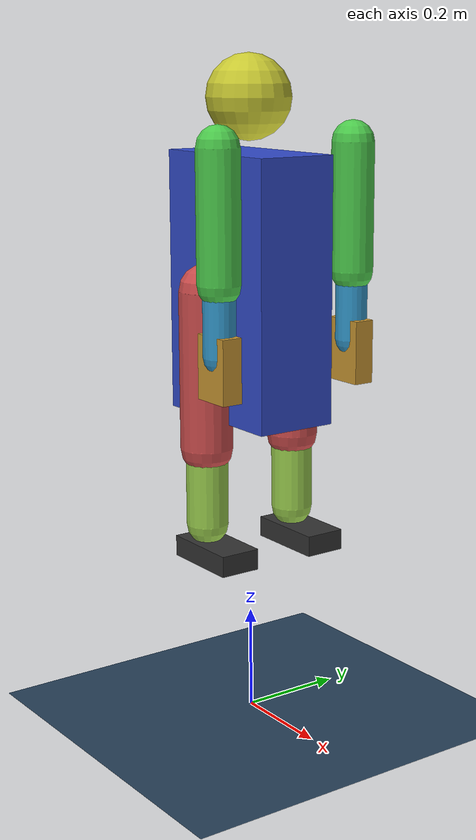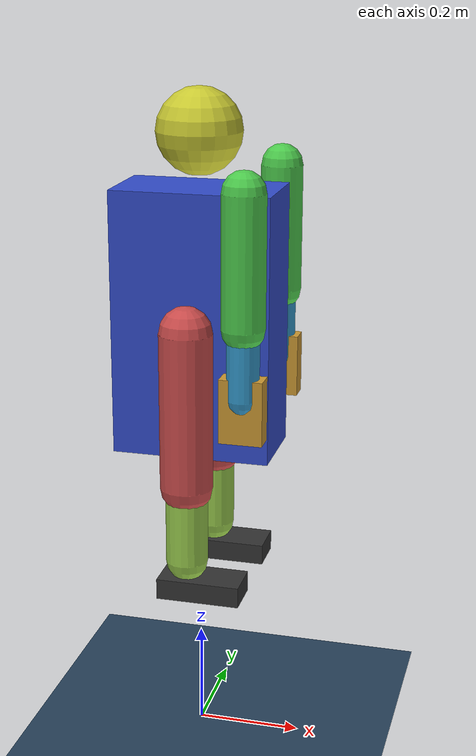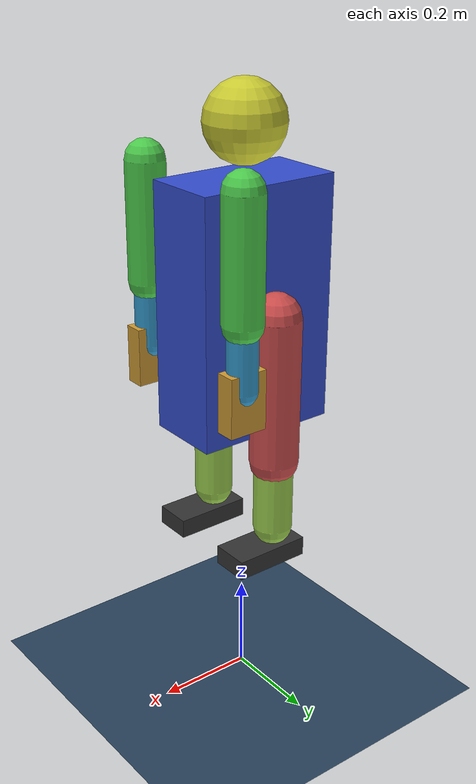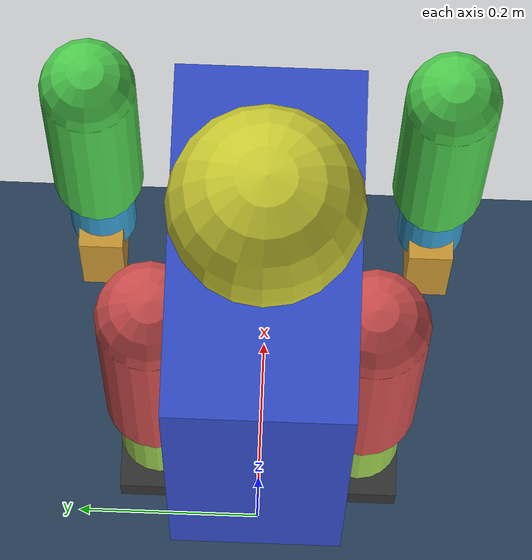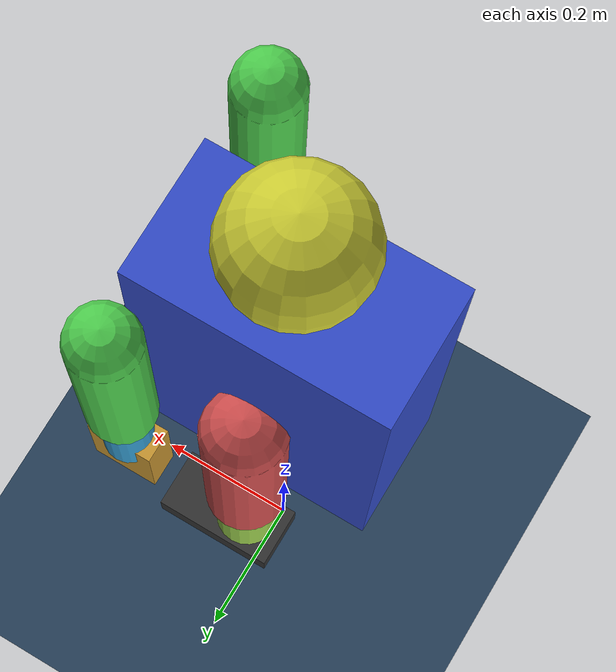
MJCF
<?xml version="1.0" ?>
<mujoco model="unitree_g1">
    <compiler angle="degree" autolimits="true"/>
    <option timestep="0.001" iterations="50" solver="Newton" tolerance="1e-10"/>

    <size nconmax="100" njmax="1000" nstack="600000"/>

    <default>
        <motor ctrlrange="-1 1" ctrllimited="true"/>
        <geom contype="1" conaffinity="1" condim="3" friction="1 0.5 0.005" margin="0.01" material="geom"/>
        <joint armature="0.01" damping="0.1" limited="true"/>
        <default class="body">
            <geom type="mesh" contype="0" conaffinity="0" group="1" density="0"/>
        </default>
        <default class="thigh">
            <joint damping="0" armature="0.01"/>
        </default>
        <default class="shin">
            <joint range="-160 -30" damping="0" armature="0.01"/>
        </default>
        <default class="foot">
            <joint damping="0" armature="0.01"/>
            <geom friction="1.5 0.005 0.0001"/>
        </default>
    </default>

    <asset>
        <texture type="skybox" builtin="gradient" rgb1="0.4 0.6 0.8" rgb2="0.0 0.0 0.0"/>
        <texture name="grid" type="2d" builtin="checker" rgb1="0.1 0.2 0.3" rgb2="0.2 0.3 0.4"/>
        <material name="grid" texture="grid" texrepeat="8 8" reflectance="0.2"/>
        <material name="geom" rgba="0.8 0.6 0.4 1"/>
        <material name="self" rgba="0.7 0.5 0.3 1"/>
        <material name="decoration" rgba="0.3 0.5 0.7 1"/>
    </asset>

    <worldbody>
        <light cutoff="100" diffuse="1 1 1" dir="-0 0 -1.3" directional="true" exponent="1" pos="0 0 1.3" specular=".1 .1 .1"/>
        <geom name="floor" size="20 20 0.125" type="plane" material="grid"/>

        <body name="pelvis" pos="0 0 0.85">
            <camera name="track" mode="trackcom" pos="0 -3 1" xyaxes="1 0 0 0 1 2"/>
            <joint name="root" type="free"/>

            <!-- Main torso -->
            <geom name="torso" type="box" size="0.15 0.08 0.25" rgba="0.2 0.3 0.8 1"/>

            <!-- Head -->
            <body name="head" pos="0 0 0.35">
                <geom name="head" type="sphere" size="0.08" rgba="0.8 0.8 0.2 1"/>
            </body>

            <!-- Left arm -->
            <body name="left_shoulder" pos="0.12 0.15 0.15">
                <joint name="left_shoulder_pitch" type="hinge" axis="1 0 0" range="-180 60" damping="1"/>
                <geom name="left_upper_arm" type="capsule" size="0.04 0.12" rgba="0.3 0.8 0.3 1"/>

                <body name="left_elbow" pos="0 0 -0.15">
                    <joint name="left_shoulder_roll" type="hinge" axis="0 1 0" range="-120 120" damping="1"/>
                    <geom name="left_forearm" type="capsule" size="0.03 0.1" rgba="0.2 0.6 0.8 1"/>

                    <body name="left_hand" pos="0 0 -0.12">
                        <joint name="left_elbow_pitch" type="hinge" axis="1 0 0" range="-120 10" damping="0.5"/>
                        <geom name="left_hand" type="box" size="0.04 0.02 0.06" rgba="0.8 0.6 0.2 1"/>
                    </body>
                </body>
            </body>

            <!-- Right arm -->
            <body name="right_shoulder" pos="0.12 -0.15 0.15">
                <joint name="right_shoulder_pitch" type="hinge" axis="1 0 0" range="-180 60" damping="1"/>
                <geom name="right_upper_arm" type="capsule" size="0.04 0.12" rgba="0.3 0.8 0.3 1"/>

                <body name="right_elbow" pos="0 0 -0.15">
                    <joint name="right_shoulder_roll" type="hinge" axis="0 -1 0" range="-120 120" damping="1"/>
                    <geom name="right_forearm" type="capsule" size="0.03 0.1" rgba="0.2 0.6 0.8 1"/>

                    <body name="right_hand" pos="0 0 -0.12">
                        <joint name="right_elbow_pitch" type="hinge" axis="1 0 0" range="-120 10" damping="0.5"/>
                        <geom name="right_hand" type="box" size="0.04 0.02 0.06" rgba="0.8 0.6 0.2 1"/>
                    </body>
                </body>
            </body>

            <!-- Left leg -->
            <body name="left_hip" pos="0 0.1 -0.15">
                <joint name="left_hip_pitch" type="hinge" axis="1 0 0" range="-60 180" class="thigh"/>
                <geom name="left_thigh" type="capsule" size="0.05 0.15" rgba="0.8 0.3 0.3 1"/>

                <body name="left_knee" pos="0 0 -0.18">
                    <joint name="left_hip_roll" type="hinge" axis="0 1 0" range="-30 30" class="thigh"/>
                    <geom name="left_shin" type="capsule" size="0.04 0.12" rgba="0.6 0.8 0.3 1"/>

                    <body name="left_ankle" pos="0 0 -0.15">
                        <joint name="left_knee_pitch" type="hinge" axis="1 0 0" range="-160 -30" class="shin"/>
                        <geom name="left_foot" type="box" size="0.08 0.04 0.02" pos="0.03 0 -0.02" rgba="0.2 0.2 0.2 1" class="foot"/>
                        <joint name="left_ankle_pitch" type="hinge" axis="1 0 0" range="-45 45" class="foot"/>
                        <joint name="left_ankle_roll" type="hinge" axis="0 1 0" range="-20 20" class="foot"/>
                    </body>
                </body>
            </body>

            <!-- Right leg -->
            <body name="right_hip" pos="0 -0.1 -0.15">
                <joint name="right_hip_pitch" type="hinge" axis="1 0 0" range="-60 180" class="thigh"/>
                <geom name="right_thigh" type="capsule" size="0.05 0.15" rgba="0.8 0.3 0.3 1"/>

                <body name="right_knee" pos="0 0 -0.18">
                    <joint name="right_hip_roll" type="hinge" axis="0 -1 0" range="-30 30" class="thigh"/>
                    <geom name="right_shin" type="capsule" size="0.04 0.12" rgba="0.6 0.8 0.3 1"/>

                    <body name="right_ankle" pos="0 0 -0.15">
                        <joint name="right_knee_pitch" type="hinge" axis="1 0 0" range="-160 -30" class="shin"/>
                        <geom name="right_foot" type="box" size="0.08 0.04 0.02" pos="0.03 0 -0.02" rgba="0.2 0.2 0.2 1" class="foot"/>
                        <joint name="right_ankle_pitch" type="hinge" axis="1 0 0" range="-45 45" class="foot"/>
                        <joint name="right_ankle_roll" type="hinge" axis="0 -1 0" range="-20 20" class="foot"/>
                    </body>
                </body>
            </body>
        </body>
    </worldbody>

    <actuator>
        <!-- Arms -->
        <motor name="left_shoulder_pitch_motor" joint="left_shoulder_pitch" gear="100"/>
        <motor name="left_shoulder_roll_motor" joint="left_shoulder_roll" gear="100"/>
        <motor name="left_elbow_pitch_motor" joint="left_elbow_pitch" gear="50"/>

        <motor name="right_shoulder_pitch_motor" joint="right_shoulder_pitch" gear="100"/>
        <motor name="right_shoulder_roll_motor" joint="right_shoulder_roll" gear="100"/>
        <motor name="right_elbow_pitch_motor" joint="right_elbow_pitch" gear="50"/>

        <!-- Legs -->
        <motor name="left_hip_pitch_motor" joint="left_hip_pitch" gear="200"/>
        <motor name="left_hip_roll_motor" joint="left_hip_roll" gear="200"/>
        <motor name="left_knee_pitch_motor" joint="left_knee_pitch" gear="200"/>
        <motor name="left_ankle_pitch_motor" joint="left_ankle_pitch" gear="100"/>
        <motor name="left_ankle_roll_motor" joint="left_ankle_roll" gear="100"/>

        <motor name="right_hip_pitch_motor" joint="right_hip_pitch" gear="200"/>
        <motor name="right_hip_roll_motor" joint="right_hip_roll" gear="200"/>
        <motor name="right_knee_pitch_motor" joint="right_knee_pitch" gear="200"/>
        <motor name="right_ankle_pitch_motor" joint="right_ankle_pitch" gear="100"/>
        <motor name="right_ankle_roll_motor" joint="right_ankle_roll" gear="100"/>
    </actuator>
</mujoco>
